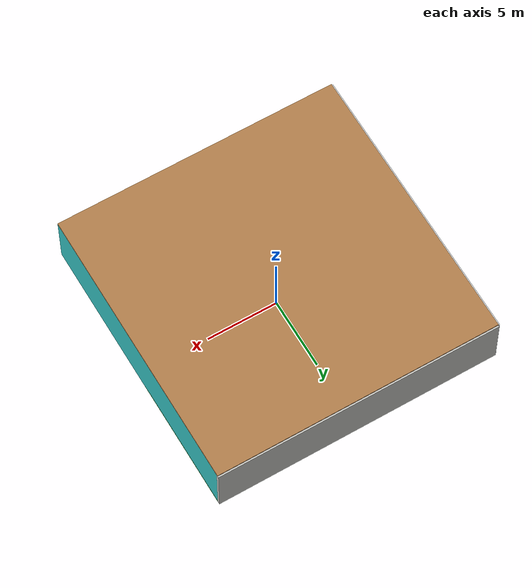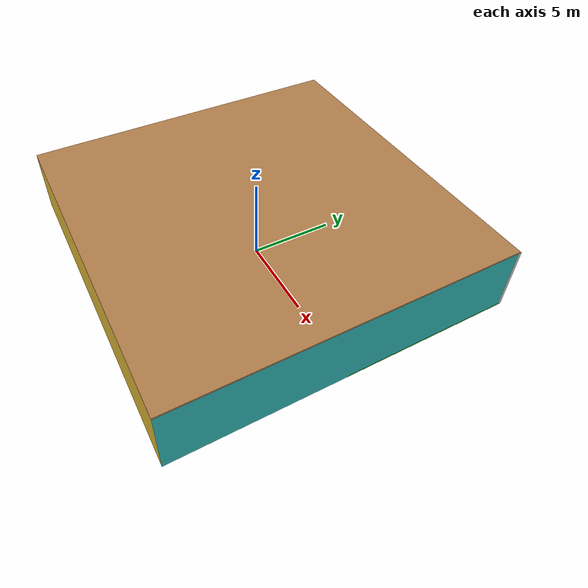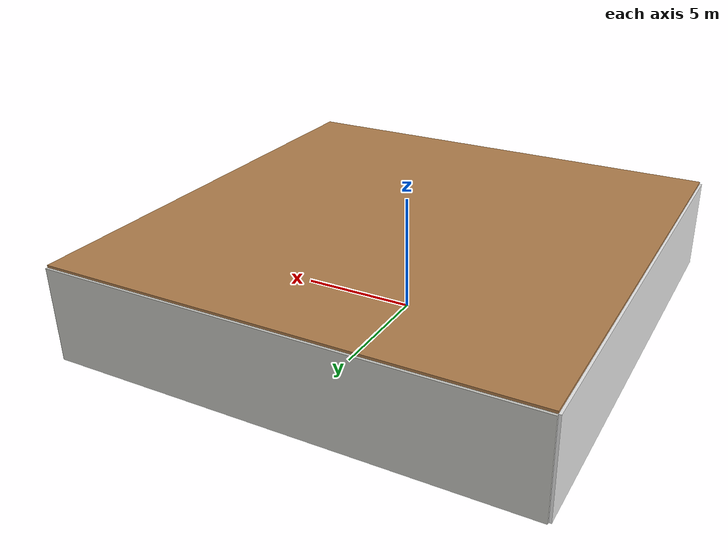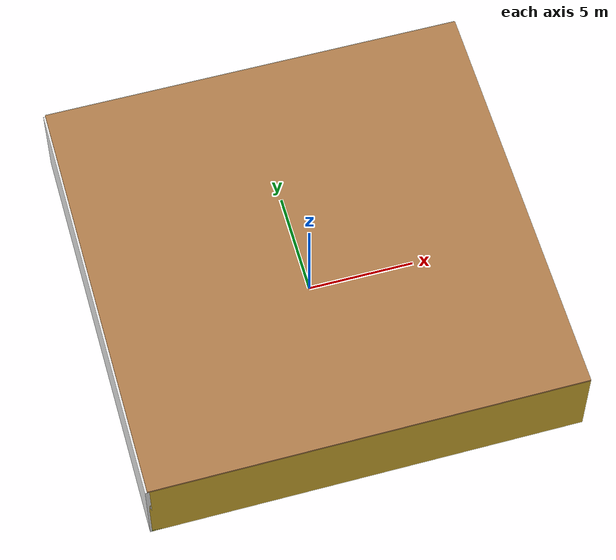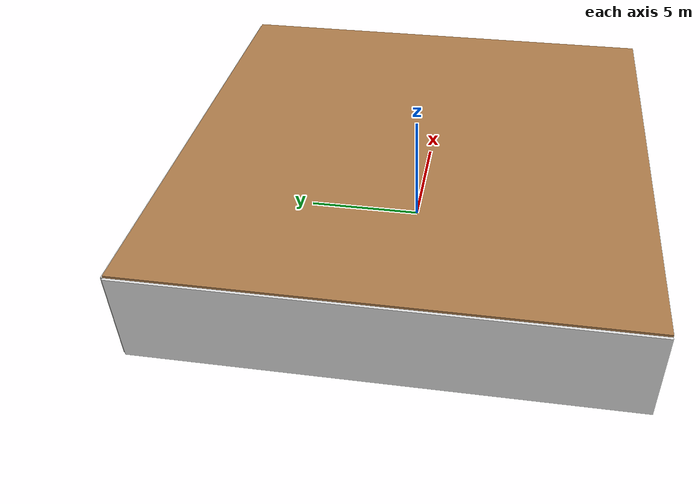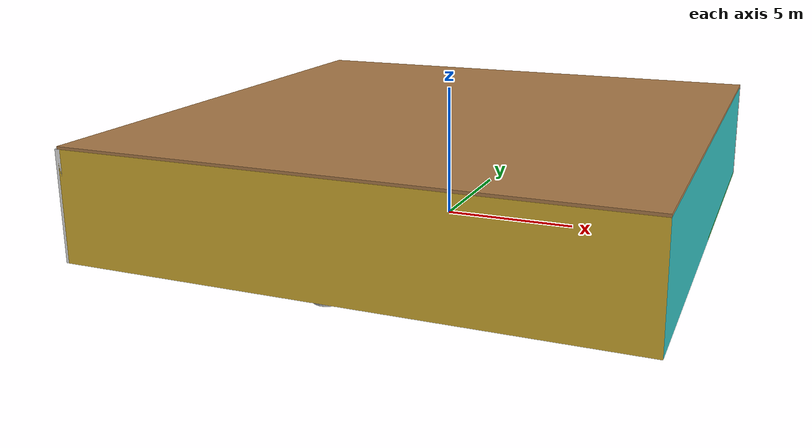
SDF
<sdf version="1.4">
 <world name="default">
  <physics type="ode">
   <max_step_size>0.001</max_step_size>
   <real_time_factor>1</real_time_factor>
   <real_time_update_rate>1000</real_time_update_rate>
   <gravity>0 0 -9.8</gravity>
  </physics>
  <scene><ambient>0.4 0.4 0.4 1</ambient><background>0.7 0.7 0.7 1</background><shadows>1</shadows></scene>
  <model name="Surrounding">
   <static>1</static>
   <link name="Ceiling">
    <collision name="Ceiling_Collision"><geometry><box><size>20 20 0.1</size></box></geometry></collision>
    <visual name="Ceiling_Visual">
     <geometry><box><size>20 20 0.1</size></box></geometry>
     <material>
      <script><uri>file://media/materials/scripts/gazebo.material</uri><name>Gazebo/WoodPallet</name></script>
     </material>
    </visual>
    <pose>0 0 4.05 0 0 0</pose>
   </link>
   <link name="Wall_South">
    <collision name="Wall_South_Collision">
     <geometry><box><size>20 0 4</size></box></geometry>
     <pose>0 0 2 0 -0 0</pose>
    </collision>
    <visual name="Wall_South_Visual">
     <pose>0 0 2 0 -0 0</pose>
     <geometry><box><size>20 0 4</size></box></geometry>
     <material>
      <script><uri>file://media/materials/scripts/gazebo.material</uri><name>Gazebo/Gold</name></script>
     </material>
    </visual>
    <velocity_decay><linear>0</linear><angular>0</angular></velocity_decay>
    <pose>0 -10 0 0 -0 0</pose>
   </link>
   <link name="Wall_East">
    <collision name="Wall_21_Collision">
     <geometry><box><size>20 0 4</size></box></geometry>
     <pose>0 0 2 0 -0 0</pose>
    </collision>
    <visual name="Wall_21_Visual">
     <pose>0 0 2 0 -0 0</pose>
     <geometry><box><size>20 0 4</size></box></geometry>
     <material>
      <script><uri>file://media/materials/scripts/gazebo.material</uri><name>Gazebo/TurquoiseGlow</name></script>
     </material>
    </visual>
    <velocity_decay><linear>0</linear><angular>0</angular></velocity_decay>
    <pose>10 0 0 0 -0 1.5708</pose>
   </link>
   <link name="Wall_North">
    <collision name="Wall_22_Collision">
     <geometry><box><size>20 0.2 4</size></box></geometry>
     <pose>0 0 2 0 -0 0</pose>
    </collision>
    <visual name="Wall_22_Visual">
     <pose>0 0 2 0 -0 0</pose>
     <geometry><box><size>20 0.2 4</size></box></geometry>
     <material>
      <script><uri>file://media/materials/scripts/gazebo.material</uri><name>Gazebo/CeilingTiled</name></script>
     </material>
    </visual>
    <velocity_decay><linear>0</linear><angular>0</angular></velocity_decay>
    <pose>0 10 0 0 -0 0</pose>
   </link>
   <link name="Wall_West">
    <collision name="Wall_23_Collision">
     <geometry><box><size>20 0.2 4</size></box></geometry>
     <pose>0 0 2 0 -0 0</pose>
    </collision>
    <visual name="Wall_23_Visual">
     <pose>0 0 2 0 -0 0</pose>
     <geometry><box><size>20 0.2 4</size></box></geometry>
     <material>
      <script><uri>file://media/materials/scripts/gazebo.material</uri><name>Gazebo/White</name></script>
     </material>
    </visual>
    <velocity_decay><linear>0</linear><angular>0</angular></velocity_decay>
    <pose>-10 0 0 0 0 -1.5708</pose>
   </link>
   <link name="Ground_link">
    <collision name="collision">
     <pose>0 0 .05 0 -0 0</pose>
     <geometry><box><size>20 20 0.1</size></box></geometry>
    </collision>
    <visual name="visual">
     <pose>0 0 .05 0 -0 0</pose>
     <geometry><box><size>20 20 0.1</size></box></geometry>
     <material>
      <script><uri>file://media/materials/scripts/gazebo.material</uri><name>Gazebo/GreenGlow</name></script>
     </material>
    </visual>
   </link>
   <static>1</static>
  </model>
  <spherical_coordinates>
   <surface_model>EARTH_WGS84</surface_model>
   <latitude_deg>0</latitude_deg>
   <longitude_deg>0</longitude_deg>
   <elevation>0</elevation>
   <heading_deg>0</heading_deg>
  </spherical_coordinates>
  <light name="lightball_0" type="diffuse">
   <diffuse>0.8 0.8 0.8 1</diffuse>
   <specular>0.2 0.2 0.2 1</specular>
   <attenuation>
    <range>100</range>
    <constant>0.7</constant>
    <linear>0.01</linear>
    <quadratic>0.001</quadratic>
   </attenuation>
   <direction>-0.5 0.1 -0.9</direction>
   <pose>-0.509823933222 7.21712782431 2.67565444058 0 0 0</pose>
  </light>
  <light name="lightball_1" type="diffuse">
   <diffuse>0.8 0.8 0.8 1</diffuse>
   <specular>0.2 0.2 0.2 1</specular>
   <attenuation>
    <range>100</range>
    <constant>0.7</constant>
    <linear>0.01</linear>
    <quadratic>0.001</quadratic>
   </attenuation>
   <direction>-0.5 0.1 -0.9</direction>
   <pose>8.96340160964 -4.33425072751 3.18253026674 0 0 0</pose>
  </light>
  <light name="lightball_2" type="diffuse">
   <diffuse>0.8 0.8 0.8 1</diffuse>
   <specular>0.2 0.2 0.2 1</specular>
   <attenuation>
    <range>100</range>
    <constant>0.7</constant>
    <linear>0.01</linear>
    <quadratic>0.001</quadratic>
   </attenuation>
   <direction>-0.5 0.1 -0.9</direction>
   <pose>-4.32818466011 -8.27645553727 1.33111391422 0 0 0</pose>
  </light>
  <light name="lightball_3" type="diffuse">
   <diffuse>0.8 0.8 0.8 1</diffuse>
   <specular>0.2 0.2 0.2 1</specular>
   <attenuation>
    <range>100</range>
    <constant>0.7</constant>
    <linear>0.01</linear>
    <quadratic>0.001</quadratic>
   </attenuation>
   <direction>-0.5 0.1 -0.9</direction>
   <pose>1.3230828903 8.93716791737 2.33333180777 0 0 0</pose>
  </light>
  <light name="lightball_4" type="diffuse">
   <diffuse>0.8 0.8 0.8 1</diffuse>
   <specular>0.2 0.2 0.2 1</specular>
   <attenuation>
    <range>100</range>
    <constant>0.7</constant>
    <linear>0.01</linear>
    <quadratic>0.001</quadratic>
   </attenuation>
   <direction>-0.5 0.1 -0.9</direction>
   <pose>-1.4369055354 -6.29141396696 3.65892063921 0 0 0</pose>
  </light>
  <light name="lightball_5" type="diffuse">
   <diffuse>0.8 0.8 0.8 1</diffuse>
   <specular>0.2 0.2 0.2 1</specular>
   <attenuation>
    <range>100</range>
    <constant>0.7</constant>
    <linear>0.01</linear>
    <quadratic>0.001</quadratic>
   </attenuation>
   <direction>-0.5 0.1 -0.9</direction>
   <pose>-0.170277884685 -2.59419841852 3.81243256723 0 0 0</pose>
  </light>
  <light name="lightball_6" type="diffuse">
   <diffuse>0.8 0.8 0.8 1</diffuse>
   <specular>0.2 0.2 0.2 1</specular>
   <attenuation>
    <range>100</range>
    <constant>0.7</constant>
    <linear>0.01</linear>
    <quadratic>0.001</quadratic>
   </attenuation>
   <direction>-0.5 0.1 -0.9</direction>
   <pose>3.57239664538 4.8956852329 2.50609377912 0 0 0</pose>
  </light>
  <include>
   <uri>model://textured_shapes</uri>
   <pose>0.535372157358 -7.96530503075 0 0 0 2.01953250794</pose>
  </include>
  <include>
   <uri>model://robocup_3Dsim_goal</uri>
   <pose>0.761025504841 -3.72914231011 0 0 0 1.46205989275</pose>
  </include>
  <include><uri>model://cabinet</uri><pose>3.54533007688 5.12161599828 0 0 0 0.854781238501</pose></include>
  <include><uri>model://cabinet</uri><pose>4.78018898137 8.12792999282 0 0 0 2.96937238414</pose></include>
  <include>
   <uri>model://textured_shapes</uri>
   <pose>7.1262138353 -6.72928018691 0 0 0 1.36914521449</pose>
  </include>
 </world>
</sdf>

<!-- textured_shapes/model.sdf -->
<sdf version="1.6">
  <model name="textured_shapes">
    <pose>0 0 0.5 0 0 0</pose>
    <link name="box">
      <pose>0 -1.5 0 0 0 0</pose>
      <collision name="collision">
        <geometry>
          <box>
            <size>1 1 1</size>
          </box>
        </geometry>
      </collision>
      <visual name="visual">
        <geometry>
          <box>
            <size>1 1 1</size>
          </box>
        </geometry>
        <material>
          <script>
            <uri>model://../model_source/models/textured_shapes/materials/scripts</uri>
            <uri>model://../model_source/models/textured_shapes/materials/textures</uri>
            <name>TexturedShape/Squares</name>
          </script>
        </material>
      </visual>
    </link>
    <link name="sphere">
      <collision name="collision">
        <geometry>
          <sphere>
            <radius>0.5</radius>
          </sphere>
        </geometry>
      </collision>
      <visual name="visual">
        <geometry>
          <sphere>
            <radius>0.5</radius>
          </sphere>
        </geometry>
        <material>
          <script>
            <uri>model://../model_source/models/textured_shapes/materials/scripts</uri>
            <uri>model://../model_source/models/textured_shapes/materials/textures</uri>
            <name>TexturedShape/Squares</name>
          </script>
        </material>
      </visual>
    </link>
    <link name="cylinder">
      <pose>0 1.5 0 0 0 0</pose>
      <collision name="collision">
        <geometry>
          <cylinder>
            <radius>0.5</radius>
            <length>1</length>
          </cylinder>
        </geometry>
      </collision>
      <visual name="visual">
        <geometry>
          <cylinder>
            <radius>0.5</radius>
            <length>1</length>
          </cylinder>
        </geometry>
        <material>
          <script>
            <uri>model://../model_source/models/textured_shapes/materials/scripts</uri>
            <uri>model://../model_source/models/textured_shapes/materials/textures</uri>
            <name>TexturedShape/Squares</name>
          </script>
        </material>
      </visual>
    </link>
  </model>
</sdf>

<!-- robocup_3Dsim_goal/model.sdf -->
<sdf version="1.5">
  <model name="robocup_3d_goal">
    <static>true</static>
    <link name="left_post">
      <pose>0 1.05 0.45 0 0 0</pose>
      <collision name="collision">
        <geometry>
          <cylinder>
            <radius>0.05</radius>
            <length>0.9</length>
          </cylinder>
        </geometry>
      </collision>
      <visual name="visual">
        <geometry>
          <cylinder>
            <radius>0.05</radius>
            <length>0.9</length>
          </cylinder>
        </geometry>
        <material>
          <script>
            <uri>file://media/materials/scripts/gazebo.material</uri>
            <name>Gazebo/ZincYellow</name>
          </script>
        </material>
      </visual>
    </link>
    <link name="left_support_horiz_lower">
      <pose>0.30 1.05 0.01 0 0 0</pose>
      <collision name="collision">
        <geometry>
          <box>
            <size>0.50 0.02 0.02</size>
          </box>
        </geometry>
      </collision>
      <visual name="visual">
        <geometry>
          <box>
            <size>0.50 0.02 0.02</size>
          </box>
        </geometry>
        <material>
          <script>
            <uri>file://media/materials/scripts/gazebo.material</uri>
            <name>Gazebo/White</name>
          </script>
        </material>
      </visual>
    </link>
    <link name="left_support_horiz_upper">
      <pose>0.30 1.05 0.79 0 0 0</pose>
      <collision name="collision">
        <geometry>
          <box>
            <size>0.50 0.02 0.02</size>
          </box>
        </geometry>
      </collision>
      <visual name="visual">
        <geometry>
          <box>
            <size>0.50 0.02 0.02</size>
          </box>
        </geometry>
        <material>
          <script>
            <uri>file://media/materials/scripts/gazebo.material</uri>
            <name>Gazebo/White</name>
          </script>
        </material>
      </visual>
    </link>
    <link name="left_support_vertical">
      <pose>0.56 1.05 0.4 0 1.5708 0</pose>
      <collision name="collision">
        <geometry>
          <box>
            <size>0.80 0.02 0.02</size>
          </box>
        </geometry>
      </collision>
      <visual name="visual">
        <geometry>
          <box>
            <size>0.80 0.02 0.02</size>
          </box>
        </geometry>
        <material>
          <script>
            <uri>file://media/materials/scripts/gazebo.material</uri>
            <name>Gazebo/White</name>
          </script>
        </material>
      </visual>
    </link>
    <link name="right_support_horiz_lower">
      <pose>0.30 -1.05 0.01 0 0 0</pose>
      <collision name="collision">
        <geometry>
          <box>
            <size>0.50 0.02 0.02</size>
          </box>
        </geometry>
      </collision>
      <visual name="visual">
        <geometry>
          <box>
            <size>0.50 0.02 0.02</size>
          </box>
        </geometry>
        <material>
          <script>
            <uri>file://media/materials/scripts/gazebo.material</uri>
            <name>Gazebo/White</name>
          </script>
        </material>
      </visual>
    </link>
    <link name="right_support_horiz_upper">
      <pose>0.30 -1.05 0.79 0 0 0</pose>
      <collision name="collision">
        <geometry>
          <box>
            <size>0.50 0.02 0.02</size>
          </box>
        </geometry>
      </collision>
      <visual name="visual">
        <geometry>
          <box>
            <size>0.50 0.02 0.02</size>
          </box>
        </geometry>
        <material>
          <script>
            <uri>file://media/materials/scripts/gazebo.material</uri>
            <name>Gazebo/White</name>
          </script>
        </material>
      </visual>
    </link>
    <link name="right_support_vertical">
      <pose>0.56 -1.05 0.4 0 1.5708 0</pose>
      <collision name="collision">
        <geometry>
          <box>
            <size>0.80 0.02 0.02</size>
          </box>
        </geometry>
      </collision>
      <visual name="visual">
        <geometry>
          <box>
            <size>0.80 0.02 0.02</size>
          </box>
        </geometry>
        <material>
          <script>
            <uri>file://media/materials/scripts/gazebo.material</uri>
            <name>Gazebo/White</name>
          </script>
        </material>
      </visual>
    </link>
    <link name="center_support_horiz_lower">
      <pose>0.56 0 0.01 0 1.5708 0</pose>
      <collision name="collision">
        <geometry>
          <box>
            <size>0.02 2.08 0.02</size>
          </box>
        </geometry>
      </collision>
      <visual name="visual">
        <geometry>
          <box>
            <size>0.02 2.08 0.02</size>
          </box>
        </geometry>
        <material>
          <script>
            <uri>file://media/materials/scripts/gazebo.material</uri>
            <name>Gazebo/White</name>
          </script>
        </material>
      </visual>
    </link>
    <link name="center_support_horiz_upper">
      <pose>0.56 0 0.79 0 1.5708 0</pose>
      <collision name="collision">
        <geometry>
          <box>
            <size>0.02 2.08 0.02</size>
          </box>
        </geometry>
      </collision>
      <visual name="visual">
        <geometry>
          <box>
            <size>0.02 2.08 0.02</size>
          </box>
        </geometry>
        <material>
          <script>
            <uri>file://media/materials/scripts/gazebo.material</uri>
            <name>Gazebo/White</name>
          </script>
        </material>
      </visual>
    </link>
    <link name="right_post">
      <pose>0 -1.05 0.45 0 0 0</pose>
      <collision name="collision">
        <geometry>
          <cylinder>
            <radius>0.05</radius>
            <length>0.9</length>
          </cylinder>
        </geometry>
      </collision>
      <visual name="visual">
        <geometry>
          <cylinder>
            <radius>0.05</radius>
            <length>0.9</length>
          </cylinder>
        </geometry>
        <material>
          <script>
            <uri>file://media/materials/scripts/gazebo.material</uri>
            <name>Gazebo/ZincYellow</name>
          </script>
        </material>
      </visual>
    </link>
    <link name="crossbar">
      <pose>0 0 0.85 1.57 1.57 0</pose>
      <collision name="collision">
        <geometry>
          <cylinder>
            <radius>0.05</radius>
            <length>2.0</length>
          </cylinder>
        </geometry>
      </collision>
      <visual name="visual">
        <geometry>
          <cylinder>
            <radius>0.05</radius>
            <length>2.0</length>
          </cylinder>
        </geometry>
        <material>
          <script>
            <uri>file://media/materials/scripts/gazebo.material</uri>
            <name>Gazebo/ZincYellow</name>
          </script>
        </material>
      </visual>
    </link>
    <link name="center_net">
      <pose>0.56 0 0.40 0 0 0</pose>
      <collision name="collision">
        <geometry>
          <box>
            <size>0.01 2.1 0.80</size>
          </box>
        </geometry>
      </collision>
      <visual name="visual">
        <geometry>
          <box>
            <size>0.01 2.1 0.80</size>
          </box>
        </geometry>
        <material>
          <script>
            <uri>model://../model_source/models/robocup09_spl_field/materials/scripts/</uri>
            <uri>model://../model_source/models/robocup09_spl_field/materials/textures/</uri>
            <name>RoboCup/Net</name>
          </script>
        </material>
      </visual>
    </link>
    <link name="left_net">
      <pose>0.30 1.05 0.40 0 0 0</pose>
      <collision name="collision">
        <geometry>
          <box>
            <size>0.50 0.01 0.76</size>
          </box>
        </geometry>
      </collision>
      <visual name="visual">
        <geometry>
          <box>
            <size>0.50 0.01 0.76</size>
          </box>
        </geometry>
        <material>
          <script>
            <uri>model://../model_source/models/robocup09_spl_field/materials/scripts/</uri>
            <uri>model://../model_source/models/robocup09_spl_field/materials/textures/</uri>
            <name>RoboCup/Net</name>
          </script>
        </material>
      </visual>
    </link>
    <link name="right_net">
      <pose>0.30 -1.05 0.40 0 0 0</pose>
      <collision name="collision">
        <geometry>
          <box>
            <size>0.50 0.01 0.76</size>
          </box>
        </geometry>
      </collision>
      <visual name="visual">
        <geometry>
          <box>
            <size>0.50 0.01 0.76</size>
          </box>
        </geometry>
        <material>
          <script>
            <uri>model://../model_source/models/robocup09_spl_field/materials/scripts/</uri>
            <uri>model://../model_source/models/robocup09_spl_field/materials/textures/</uri>
            <name>RoboCup/Net</name>
          </script>
        </material>
      </visual>
    </link>
  </model>
</sdf>

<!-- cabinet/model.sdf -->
<sdf version="1.5">
  <model name="cabinet">
    <static>true</static>
    <link name="cabinet_bottom_plate">
      <inertial>
        <pose>0 0 -1 0 0 0</pose>
        <inertia>
          <ixx>2.050000</ixx>
          <ixy>0</ixy>
          <ixz>0</ixz>
          <iyy>2.050000</iyy>
          <iyz>0</iyz>
          <izz>2.050000</izz>
        </inertia>
        <mass>25.000000</mass>
      </inertial>
      <collision name="cabinet_bottom_plate_geom">
        <pose>0 0 0.010000 0 0 0</pose>
        <geometry>
          <box>
            <size>0.450000 0.450000 0.020000</size>
          </box>
        </geometry>
      </collision>
      <visual name="cabinet_bottom_plate_geom_visual">
        <pose>0 0 0.010000 0 0 0</pose>
        <geometry>
          <box>
            <size>0.450000 0.450000 0.020000</size>
          </box>
        </geometry>
        <material>
          <script>
            <uri>model://media/materials/scripts/gazebo.material</uri>
            <name>Gazebo/Wood</name>
          </script>
        </material>
      </visual>
      <collision name="cabinet_bottom_plate_geom_cabinet_back_plate">
        <pose>0.235000 0 0.510000 0 0 0</pose>
        <geometry>
          <box>
            <size>0.020000 0.450000 1.020000</size>
          </box>
        </geometry>
      </collision>
      <visual name="cabinet_bottom_plate_geom_cabinet_back_plate_visual">
        <pose>0.235000 0 0.510000 0 0 0</pose>
        <geometry>
          <box>
            <size>0.020000 0.450000 1.020000</size>
          </box>
        </geometry>
        <material>
          <script>
            <uri>model://media/materials/scripts/gazebo.material</uri>
            <name>Gazebo/Wood</name>
          </script>
        </material>
      </visual>
      <collision name="cabinet_bottom_plate_geom_cabinet_left_plate">
        <pose>0 0.235000 0.510000 0 0 0</pose>
        <geometry>
          <box>
            <size>0.450000 0.020000 1.020000</size>
          </box>
        </geometry>
      </collision>
      <visual name="cabinet_bottom_plate_geom_cabinet_left_plate_visual">
        <pose>0 0.235000 0.510000 0 0 0</pose>
        <geometry>
          <box>
            <size>0.450000 0.020000 1.020000</size>
          </box>
        </geometry>
        <material>
          <script>
            <uri>model://media/materials/scripts/gazebo.material</uri>
            <name>Gazebo/Wood</name>
          </script>
        </material>
      </visual>
      <collision name="cabinet_bottom_plate_geom_cabinet_middle_plate">
        <pose>0 0 0.510000 0 0 0</pose>
        <geometry>
          <box>
            <size>0.450000 0.450000 0.020000</size>
          </box>
        </geometry>
      </collision>
      <visual name="cabinet_bottom_plate_geom_cabinet_middle_plate_visual">
        <pose>0 0 0.510000 0 0 0</pose>
        <geometry>
          <box>
            <size>0.450000 0.450000 0.020000</size>
          </box>
        </geometry>
        <material>
          <script>
            <uri>model://media/materials/scripts/gazebo.material</uri>
            <name>Gazebo/Wood</name>
          </script>
        </material>
      </visual>
      <collision name="cabinet_bottom_plate_geom_cabinet_right_plate">
        <pose>0 -0.235000 0.510000 0 0 0</pose>
        <geometry>
          <box>
            <size>0.450000 0.020000 1.020000</size>
          </box>
        </geometry>
      </collision>
      <visual name="cabinet_bottom_plate_geom_cabinet_right_plate_visual">
        <pose>0 -0.235000 0.510000 0 0 0</pose>
        <geometry>
          <box>
            <size>0.450000 0.020000 1.020000</size>
          </box>
        </geometry>
        <material>
          <script>
            <uri>model://media/materials/scripts/gazebo.material</uri>
            <name>Gazebo/Wood</name>
          </script>
        </material>
      </visual>
      <collision name="cabinet_bottom_plate_geom_cabinet_top_plate">
        <pose>0 0 1.010000 0 0 0</pose>
        <geometry>
          <box>
            <size>0.450000 0.450000 0.020000</size>
          </box>
        </geometry>
      </collision>
      <visual name="cabinet_bottom_plate_geom_cabinet_top_plate_visual">
        <pose>0 0 1.010000 0 0 0</pose>
        <geometry>
          <box>
            <size>0.450000 0.450000 0.020000</size>
          </box>
        </geometry>
        <material>
          <script>
            <uri>model://media/materials/scripts/gazebo.material</uri>
            <name>Gazebo/Wood</name>
          </script>
        </material>
      </visual>
    </link>
  </model>
</sdf>
